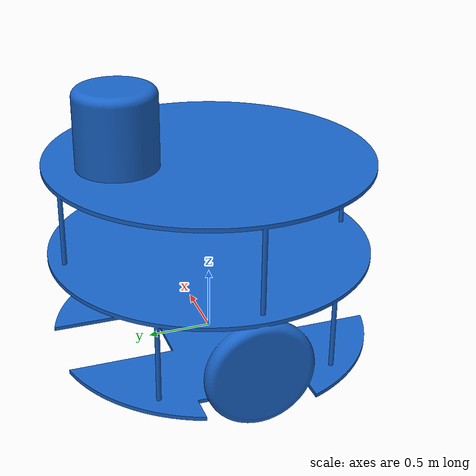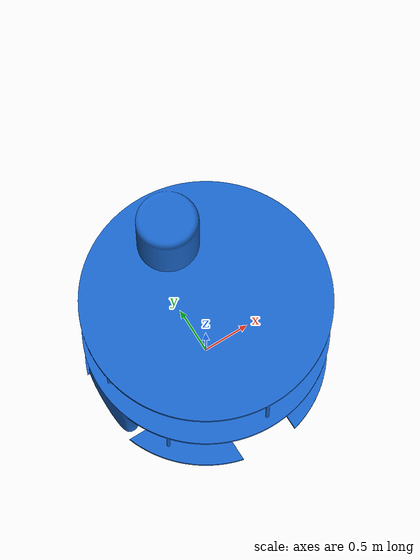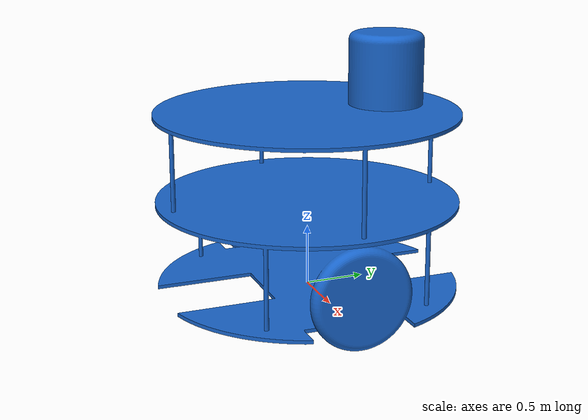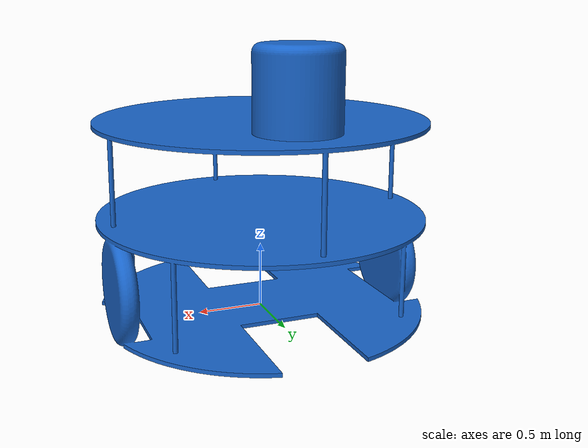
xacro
<robot name="mi_robot">

  <link name="base_footprint">
<visual>
  <origin xyz="0 0 0" rpy="0 0 0"/>
    <geometry>
      <mesh filename="file:///home/fac/Desktop/robot_diff_tesis.stl"
            scale="0.01 0.01 0.01"/>
    </geometry>
  <material  name="blue">
  <color rgba="0.1 0.4 0.8 1.0"/>
  </material>
</visual>

<collision>
    <origin xyz="0 0 0" rpy="0 0 0"/>
    <geometry>
      <mesh filename="file:///home/fac/Desktop/robot_diff_tesis.stl"
            scale="0.01 0.01 0.01"/>
    </geometry>
  </collision>

  <inertial>
    <origin xyz="0 0 0" rpy="0 0 0"/>
    <mass value="5.0"/>
    <inertia ixx="0.1" ixy="0" ixz="0"
             iyy="0.1" iyz="0"
             izz="0.1"/>
  </inertial>

  </link>

  <link name="left_wheel"/>
  <link name="right_wheel"/>

    <!-- LiDAR -->
  <link name="laser_link"/>

  <joint name="laser_joint" type="fixed">
    <parent link="base_footprint"/>
    <child link="laser_link"/>
    <!-- Ajusta estas coordenadas a la posición real del sensor -->
    <origin xyz="0.15 0.0 0.10" rpy="0 0 0"/>
  </joint>

  <joint name="left_wheel_joint" type="continuous">
    <parent link="base_footprint"/>
    <child link="left_wheel"/>
     <origin xyz="0 0.11 0"/>
    <axis xyz="0 1 0"/>
  </joint>

  <joint name="right_wheel_joint" type="continuous">
    <parent link="base_footprint"/>
    <child link="right_wheel"/>
    <origin xyz="0 -0.11 0"/>
    <axis xyz="0 1 0"/>
  </joint>

  <ros2_control name="RobotSystem" type="system">

    <hardware>
    <!-- comentario -->
       <plugin>mi_robot_hardware/MiRobotHardware</plugin>
    </hardware>

    <joint name="left_wheel_joint">
    <command_interface name="velocity"/>
      <state_interface name="position"/>
      <state_interface name="velocity"/>
    </joint>

    <joint name="right_wheel_joint">
 <command_interface name="velocity"/>
      <state_interface name="position"/>
      <state_interface name="velocity"/>
    </joint>

  </ros2_control>

</robot>
